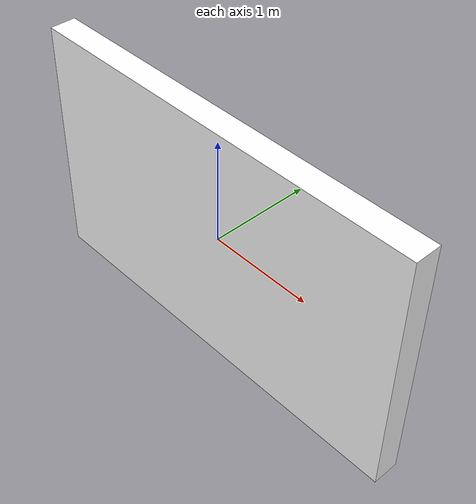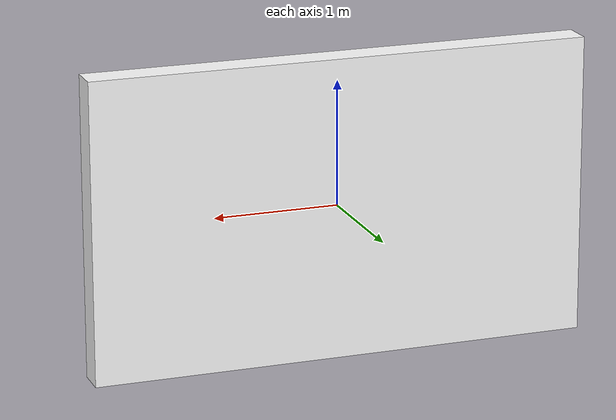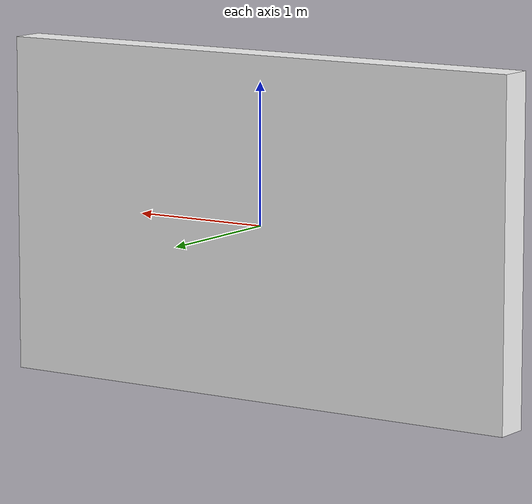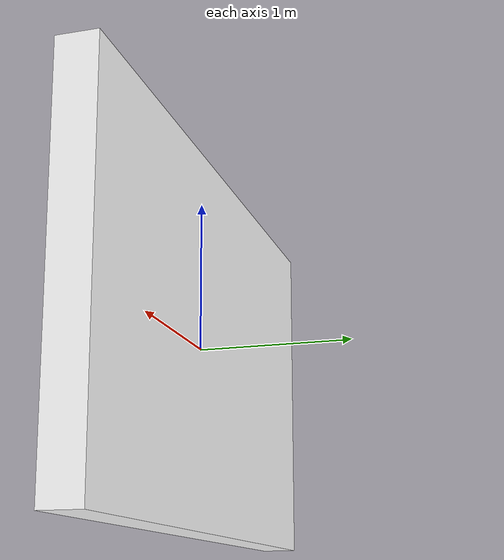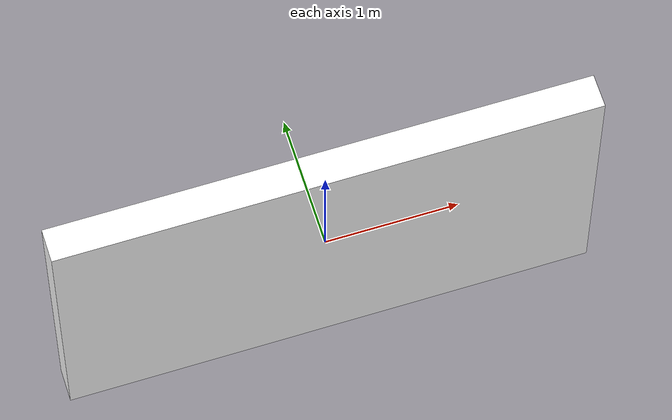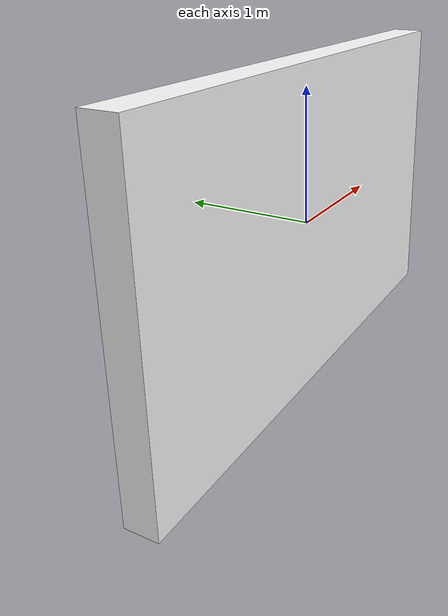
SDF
<?xml version="1.0"?>
<sdf version="1.8">
  <model name="simple_wall">
    <static>true</static>
    <link name="link">
      <collision name="col">
        <geometry><box><size>4.0 0.25 2.4</size></box></geometry>
      </collision>
      <visual name="vis">
        <cast_shadows>false</cast_shadows>
        <geometry><box><size>4.0 0.25 2.4</size></box></geometry>
        <material>
          <ambient>0.7 0.7 0.7 1</ambient>
          <diffuse>1 1 1 1</diffuse>
          <pbr>
            <metal>
              <albedo_map>model://textures/brick.png</albedo_map>
            </metal>
          </pbr>
        </material>
      </visual>
    </link>
  </model>
</sdf>
